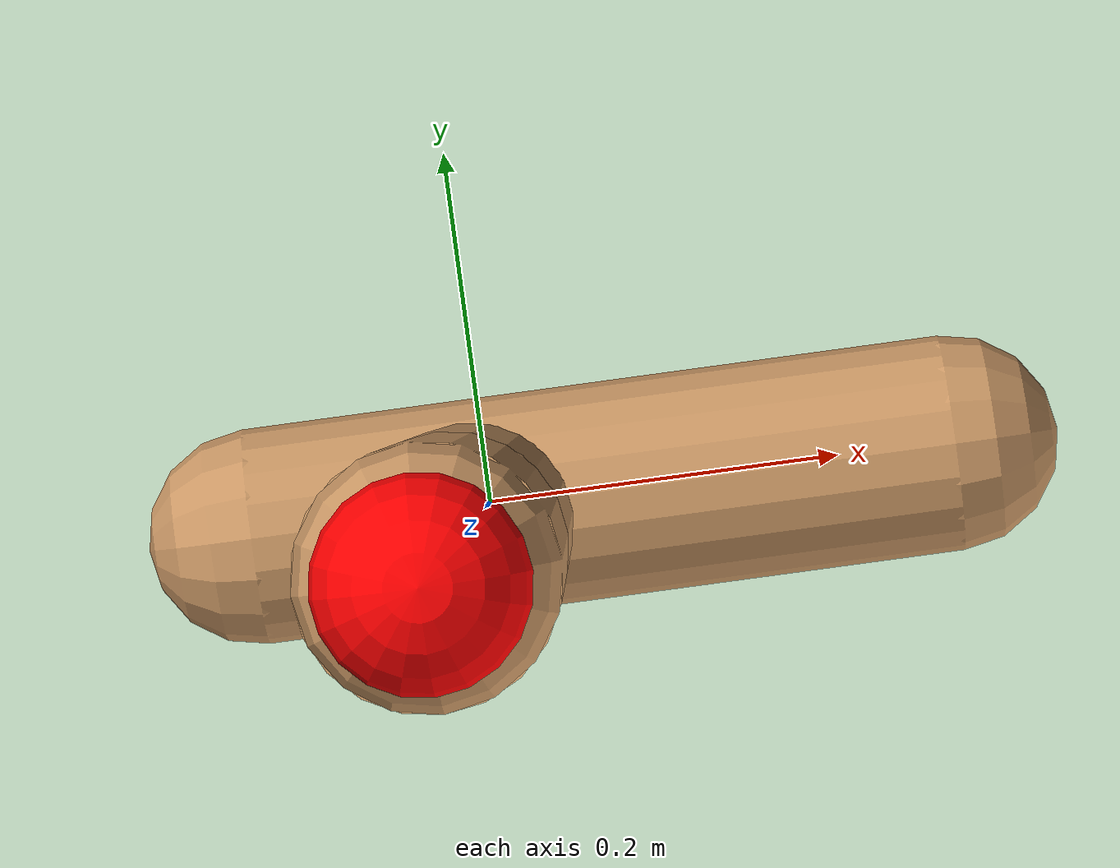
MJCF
<mujoco model="hopper">
  <compiler angle="radian" autolimits="true"/>
  <option integrator="RK4"/>
  <visual>
    <map znear="0.02"/>
  </visual>
  <default class="main">
    <joint limited="true" armature="1" damping="1"/>
    <geom condim="1" solimp="0.8 0.8 0.01 0.5 2" margin="0.001" material="geom" rgba="0.8 0.6 0.4 1"/>
    <general ctrllimited="true" ctrlrange="-0.4 0.4"/>
  </default>
  <asset>
    <texture type="skybox" builtin="gradient" rgb1="0.4 0.5 0.6" rgb2="0 0 0" width="100" height="600"/>
    <texture type="cube" name="texgeom" builtin="flat" mark="cross" rgb1="0.8 0.6 0.4" rgb2="0.8 0.6 0.4" markrgb="1 1 1" width="127" height="762"/>
    <texture type="2d" name="texplane" builtin="checker" rgb1="0 0 0" rgb2="0.8 0.8 0.8" width="100" height="100"/>
    <material name="MatPlane" texture="texplane" texrepeat="60 60" specular="1" shininess="1" reflectance="0.5"/>
    <material name="geom" texture="texgeom" texuniform="true"/>
  </asset>
  <worldbody>
    <geom name="floor" size="20 20 0.125" type="plane" condim="3" material="MatPlane" rgba="0.8 0.9 0.8 1"/>
    <light pos="0 0 1.3" dir="0 0 -1" directional="true" cutoff="100" exponent="1" diffuse="1 1 1" specular="0.1 0.1 0.1"/>
    <body name="torso" pos="0 0 1.25" gravcomp="0">
      <joint name="rootx" pos="0 0 -1.25" axis="1 0 0" limited="false" type="slide" armature="0" damping="0"/>
      <joint name="rootz" pos="0 0 -1.25" axis="0 0 1" limited="false" type="slide" ref="1.25" armature="0" damping="0"/>
      <joint name="rooty" pos="0 0 0" axis="0 1 0" limited="false" armature="0" damping="0"/>
      <geom name="torso_geom" size="0.05 0.2" type="capsule" friction="0.9 0.005 0.0001"/>
      <camera name="track" pos="0 -3 -0.25" quat="0.707107 0.707107 0 0" mode="trackcom"/>
      <body name="thigh" pos="0 0 -0.2" gravcomp="0">
        <joint name="thigh_joint" pos="0 0 0" axis="0 -1 0" range="-2.61799 0"/>
        <geom name="thigh_geom" size="0.05 0.225" pos="0 0 -0.225" type="capsule" friction="0.9 0.005 0.0001"/>
        <body name="leg" pos="0 0 -0.7" gravcomp="0">
          <joint name="leg_joint" pos="0 0 0.25" axis="0 -1 0" range="-2.61799 0"/>
          <geom name="leg_geom" size="0.04 0.25" type="capsule" friction="0.9 0.005 0.0001"/>
          <body name="foot" pos="0.065 0 -0.25" gravcomp="0">
            <joint name="foot_joint" pos="-0.065 0 0" axis="0 -1 0" range="-0.785398 0.785398"/>
            <geom name="foot_geom" size="0.06 0.195" quat="0.707107 0 -0.707107 0" type="capsule" friction="2 0.005 0.0001"/>
          </body>
        </body>
      </body>
    </body>
    <body name="ball" pos="0 0 1.53" gravcomp="0">
      <joint name="tar:x" pos="0 0 0" axis="1 0 0" limited="false" type="slide" armature="0" damping="0"/>
      <joint name="tar:y" pos="0 0 0" axis="0 1 0" limited="false" type="slide" armature="0" damping="0"/>
      <joint name="tar:z" pos="0 0 0" axis="0 0 1" limited="false" type="slide" armature="0" damping="0"/>
      <geom name="ball_geom" size="0.025" condim="4" priority="1" friction="0.1 0.1 0.1" solref="-10000 -10" solimp="0.9 0.95 0.001 0.5 2" mass="0.1" rgba="0.8 0.2 0.1 1"/>
      <site name="target_ball" pos="0 0 0" size="0.04" rgba="1 0 0 1"/>
    </body>
  </worldbody>
  <actuator>
    <general joint="thigh_joint" ctrlrange="-1 1" gear="200 0 0 0 0 0" actdim="0"/>
    <general joint="leg_joint" ctrlrange="-1 1" gear="200 0 0 0 0 0" actdim="0"/>
    <general joint="foot_joint" ctrlrange="-1 1" gear="200 0 0 0 0 0" actdim="0"/>
  </actuator>
</mujoco>
